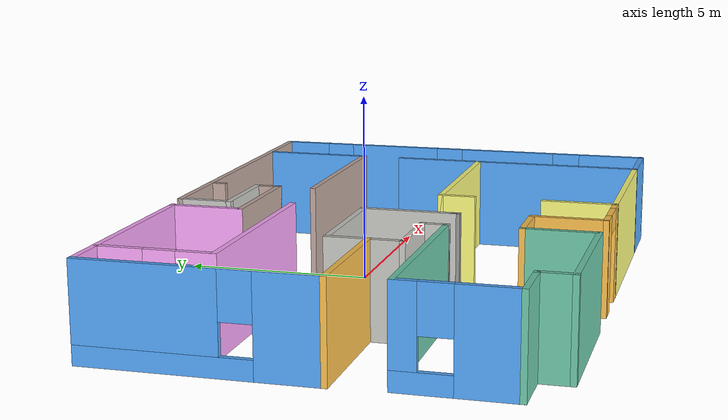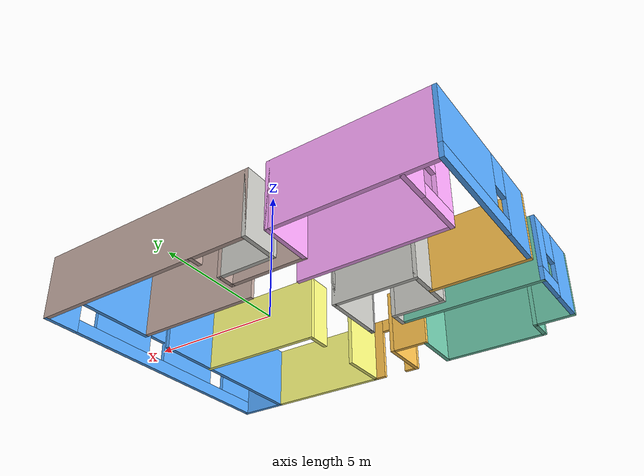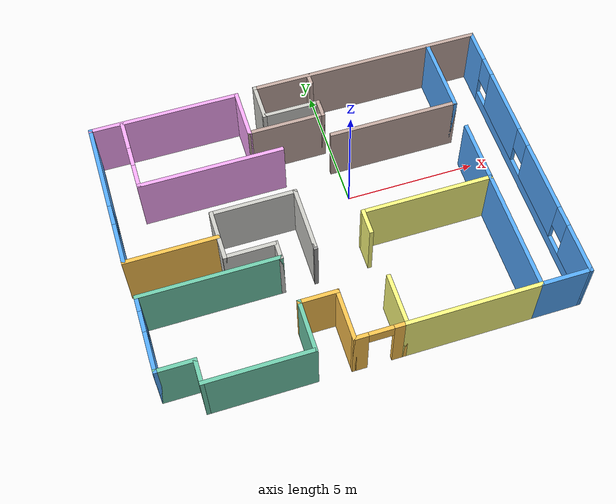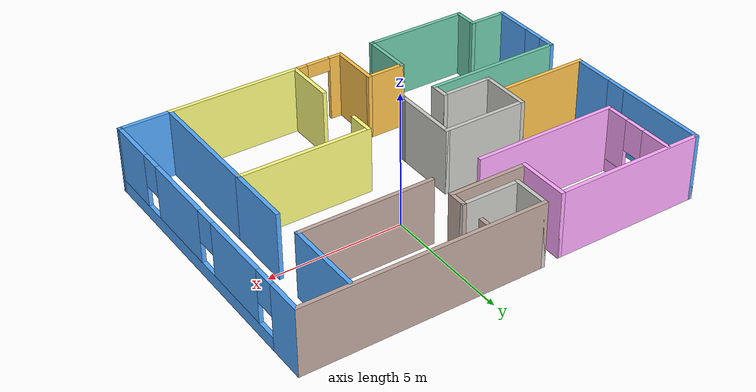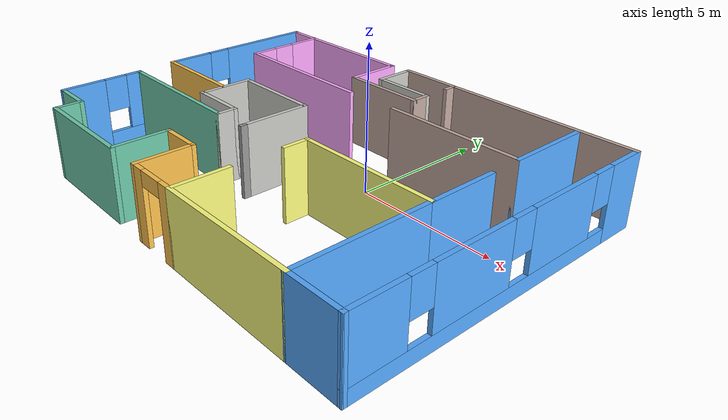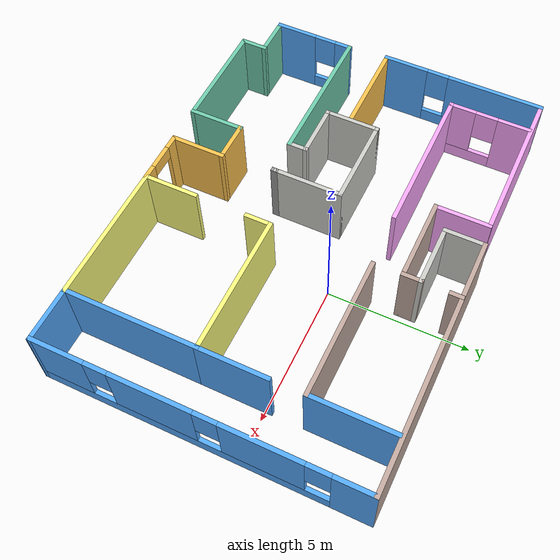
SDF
<?xml version='1.0'?>
<sdf version='1.6'>
  <model name='Building'>
    <pose frame=''>-1.13087 -1.23512 0 0 -0 0</pose>
    <link name='Wall_1'>
      <pose frame=''>-0.006279 -5.54906 0 0 -0 0</pose>
      <visual name='Wall_1_Visual_0'>
        <pose frame=''>-0.718304 0 1.25 0 -0 0</pose>
        <geometry>
          <box>
            <size>0.563392 0.15 2.5</size>
          </box>
        </geometry>
        <material>
          <script>
            <uri>file://media/materials/scripts/gazebo.material</uri>
            <name>Gazebo/Grey</name>
          </script>
          <ambient>1 0.764706 0.305882 1</ambient>
        </material>
        <meta>
          <layer>0</layer>
        </meta>
      </visual>
      <collision name='Wall_1_Collision_0'>
        <geometry>
          <box>
            <size>0.563392 0.15 2.5</size>
          </box>
        </geometry>
        <pose frame=''>-0.718304 0 1.25 0 -0 0</pose>
      </collision>
      <visual name='Wall_1_Visual_1'>
        <pose frame=''>0.731696 0 1.25 0 -0 0</pose>
        <geometry>
          <box>
            <size>0.536608 0.15 2.5</size>
          </box>
        </geometry>
        <material>
          <script>
            <uri>file://media/materials/scripts/gazebo.material</uri>
            <name>Gazebo/Grey</name>
          </script>
          <ambient>1 0.764706 0.305882 1</ambient>
        </material>
        <meta>
          <layer>0</layer>
        </meta>
      </visual>
      <collision name='Wall_1_Collision_1'>
        <geometry>
          <box>
            <size>0.536608 0.15 2.5</size>
          </box>
        </geometry>
        <pose frame=''>0.731696 0 1.25 0 -0 0</pose>
      </collision>
      <visual name='Wall_1_Visual_2'>
        <pose frame=''>0.013392 0 2.25 0 -0 0</pose>
        <geometry>
          <box>
            <size>0.9 0.15 0.5</size>
          </box>
        </geometry>
        <material>
          <script>
            <uri>file://media/materials/scripts/gazebo.material</uri>
            <name>Gazebo/Grey</name>
          </script>
          <ambient>1 0.764706 0.305882 1</ambient>
        </material>
        <meta>
          <layer>0</layer>
        </meta>
      </visual>
      <collision name='Wall_1_Collision_2'>
        <geometry>
          <box>
            <size>0.9 0.15 0.5</size>
          </box>
        </geometry>
        <pose frame=''>0.013392 0 2.25 0 -0 0</pose>
      </collision>
    </link>
    <link name='Wall_12'>
      <pose frame=''>-7.48128 -3.27406 0 0 -0 1.5708</pose>
      <visual name='Wall_12_Visual_0'>
        <pose frame=''>-0.718473 0 1.25 0 -0 0</pose>
        <geometry>
          <box>
            <size>1.56305 0.15 2.5</size>
          </box>
        </geometry>
        <material>
          <script>
            <uri>file://media/materials/scripts/gazebo.material</uri>
            <name>Gazebo/Grey</name>
          </script>
          <ambient>0.333333 0.666667 1 1</ambient>
        </material>
        <meta>
          <layer>0</layer>
        </meta>
      </visual>
      <collision name='Wall_12_Collision_0'>
        <geometry>
          <box>
            <size>1.56305 0.15 2.5</size>
          </box>
        </geometry>
        <pose frame=''>-0.718473 0 1.25 0 -0 0</pose>
      </collision>
      <visual name='Wall_12_Visual_1'>
        <pose frame=''>0.781527 0 0.25 0 -0 0</pose>
        <geometry>
          <box>
            <size>1.43695 0.15 0.5</size>
          </box>
        </geometry>
        <material>
          <script>
            <uri>file://media/materials/scripts/gazebo.material</uri>
            <name>Gazebo/Grey</name>
          </script>
          <ambient>0.333333 0.666667 1 1</ambient>
        </material>
        <meta>
          <layer>0</layer>
        </meta>
      </visual>
      <collision name='Wall_12_Collision_1'>
        <geometry>
          <box>
            <size>1.43695 0.15 0.5</size>
          </box>
        </geometry>
        <pose frame=''>0.781527 0 0.25 0 -0 0</pose>
      </collision>
      <visual name='Wall_12_Visual_2'>
        <pose frame=''>1.18153 0 1.5 0 -0 0</pose>
        <geometry>
          <box>
            <size>0.636947 0.15 2</size>
          </box>
        </geometry>
        <material>
          <script>
            <uri>file://media/materials/scripts/gazebo.material</uri>
            <name>Gazebo/Grey</name>
          </script>
          <ambient>0.333333 0.666667 1 1</ambient>
        </material>
        <meta>
          <layer>0</layer>
        </meta>
      </visual>
      <collision name='Wall_12_Collision_2'>
        <geometry>
          <box>
            <size>0.636947 0.15 2</size>
          </box>
        </geometry>
        <pose frame=''>1.18153 0 1.5 0 -0 0</pose>
      </collision>
      <visual name='Wall_12_Visual_3'>
        <pose frame=''>0.463053 0 1.9 0 -0 0</pose>
        <geometry>
          <box>
            <size>0.8 0.15 1.2</size>
          </box>
        </geometry>
        <material>
          <script>
            <uri>file://media/materials/scripts/gazebo.material</uri>
            <name>Gazebo/Grey</name>
          </script>
          <ambient>0.333333 0.666667 1 1</ambient>
        </material>
        <meta>
          <layer>0</layer>
        </meta>
      </visual>
      <collision name='Wall_12_Collision_3'>
        <geometry>
          <box>
            <size>0.8 0.15 1.2</size>
          </box>
        </geometry>
        <pose frame=''>0.463053 0 1.9 0 -0 0</pose>
      </collision>
    </link>
    <link name='Wall_13'>
      <collision name='Wall_13_Collision'>
        <geometry>
          <box>
            <size>5.25 0.15 2.5</size>
          </box>
        </geometry>
        <pose frame=''>0 0 1.25 0 -0 0</pose>
      </collision>
      <visual name='Wall_13_Visual'>
        <pose frame=''>0 0 1.25 0 -0 0</pose>
        <geometry>
          <box>
            <size>5.25 0.15 2.5</size>
          </box>
        </geometry>
        <material>
          <script>
            <uri>file://media/materials/scripts/gazebo.material</uri>
            <name>Gazebo/Grey</name>
          </script>
          <ambient>0.435294 0.796078 0.67451 1</ambient>
        </material>
        <meta>
          <layer>0</layer>
        </meta>
      </visual>
      <pose frame=''>-4.93128 -1.84906 0 0 -0 0</pose>
    </link>
    <link name='Wall_14'>
      <collision name='Wall_14_Collision'>
        <geometry>
          <box>
            <size>0.75 0.15 2.5</size>
          </box>
        </geometry>
        <pose frame=''>0 0 1.25 0 -0 0</pose>
      </collision>
      <visual name='Wall_14_Visual'>
        <pose frame=''>0 0 1.25 0 -0 0</pose>
        <geometry>
          <box>
            <size>0.75 0.15 2.5</size>
          </box>
        </geometry>
        <material>
          <script>
            <uri>file://media/materials/scripts/gazebo.material</uri>
            <name>Gazebo/CeilingTiled</name>
          </script>
          <ambient>1 1 1 1</ambient>
        </material>
        <meta>
          <layer>0</layer>
        </meta>
      </visual>
      <pose frame=''>-2.38128 -1.54906 0 0 -0 1.5708</pose>
    </link>
    <link name='Wall_15'>
      <collision name='Wall_15_Collision'>
        <geometry>
          <box>
            <size>2 0.15 2.5</size>
          </box>
        </geometry>
        <pose frame=''>0 0 1.25 0 -0 0</pose>
      </collision>
      <visual name='Wall_15_Visual'>
        <pose frame=''>0 0 1.25 0 -0 0</pose>
        <geometry>
          <box>
            <size>2 0.15 2.5</size>
          </box>
        </geometry>
        <material>
          <script>
            <uri>file://media/materials/scripts/gazebo.material</uri>
            <name>Gazebo/CeilingTiled</name>
          </script>
          <ambient>1 1 1 1</ambient>
        </material>
        <meta>
          <layer>0</layer>
        </meta>
      </visual>
      <pose frame=''>-3.30628 -1.24906 0 0 -0 3.14159</pose>
    </link>
    <link name='Wall_16'>
      <collision name='Wall_16_Collision'>
        <geometry>
          <box>
            <size>2 0.15 2.5</size>
          </box>
        </geometry>
        <pose frame=''>0 0 1.25 0 -0 0</pose>
      </collision>
      <visual name='Wall_16_Visual'>
        <pose frame=''>0 0 1.25 0 -0 0</pose>
        <geometry>
          <box>
            <size>2 0.15 2.5</size>
          </box>
        </geometry>
        <material>
          <script>
            <uri>file://media/materials/scripts/gazebo.material</uri>
            <name>Gazebo/CeilingTiled</name>
          </script>
          <ambient>1 1 1 1</ambient>
        </material>
        <meta>
          <layer>0</layer>
        </meta>
      </visual>
      <pose frame=''>-4.23128 -0.324056 0 0 -0 1.5708</pose>
    </link>
    <link name='Wall_2'>
      <collision name='Wall_2_Collision'>
        <geometry>
          <box>
            <size>2 0.15 2.5</size>
          </box>
        </geometry>
        <pose frame=''>0 0 1.25 0 -0 0</pose>
      </collision>
      <visual name='Wall_2_Visual'>
        <pose frame=''>0 0 1.25 0 -0 0</pose>
        <geometry>
          <box>
            <size>2 0.15 2.5</size>
          </box>
        </geometry>
        <material>
          <script>
            <uri>file://media/materials/scripts/gazebo.material</uri>
            <name>Gazebo/Grey</name>
          </script>
          <ambient>1 1 0.498039 1</ambient>
        </material>
        <meta>
          <layer>0</layer>
        </meta>
      </visual>
      <pose frame=''>0.918721 -4.62406 0 0 -0 1.5708</pose>
    </link>
    <link name='Wall_25'>
      <collision name='Wall_25_Collision'>
        <geometry>
          <box>
            <size>5 0.15 2.5</size>
          </box>
        </geometry>
        <pose frame=''>0 0 1.25 0 -0 0</pose>
      </collision>
      <visual name='Wall_25_Visual'>
        <pose frame=''>0 0 1.25 0 -0 0</pose>
        <geometry>
          <box>
            <size>5 0.15 2.5</size>
          </box>
        </geometry>
        <material>
          <script>
            <uri>file://media/materials/scripts/gazebo.material</uri>
            <name>Gazebo/Grey</name>
          </script>
          <ambient>1 1 0.498039 1</ambient>
        </material>
        <meta>
          <layer>0</layer>
        </meta>
      </visual>
      <pose frame=''>3.34372 -5.54906 0 0 -0 0</pose>
    </link>
    <link name='Wall_26'>
      <collision name='Wall_26_Collision'>
        <geometry>
          <box>
            <size>4.75 0.15 2.5</size>
          </box>
        </geometry>
        <pose frame=''>0 0 1.25 0 -0 0</pose>
      </collision>
      <visual name='Wall_26_Visual'>
        <pose frame=''>0 0 1.25 0 -0 0</pose>
        <geometry>
          <box>
            <size>4.75 0.15 2.5</size>
          </box>
        </geometry>
        <material>
          <script>
            <uri>file://media/materials/scripts/gazebo.material</uri>
            <name>Gazebo/Grey</name>
          </script>
          <ambient>0.333333 0.666667 1 1</ambient>
        </material>
        <meta>
          <layer>0</layer>
        </meta>
      </visual>
      <pose frame=''>5.76872 -3.24906 0 0 -0 1.5708</pose>
    </link>
    <link name='Wall_31'>
      <collision name='Wall_31_Collision'>
        <geometry>
          <box>
            <size>5 0.15 2.5</size>
          </box>
        </geometry>
        <pose frame=''>0 0 1.25 0 -0 0</pose>
      </collision>
      <visual name='Wall_31_Visual'>
        <pose frame=''>0 0 1.25 0 -0 0</pose>
        <geometry>
          <box>
            <size>5 0.15 2.5</size>
          </box>
        </geometry>
        <material>
          <script>
            <uri>file://media/materials/scripts/gazebo.material</uri>
            <name>Gazebo/Grey</name>
          </script>
          <ambient>1 1 0.498039 1</ambient>
        </material>
        <meta>
          <layer>0</layer>
        </meta>
      </visual>
      <pose frame=''>3.34372 -0.949056 0 0 -0 3.14159</pose>
    </link>
    <link name='Wall_32'>
      <collision name='Wall_32_Collision'>
        <geometry>
          <box>
            <size>1 0.15 2.5</size>
          </box>
        </geometry>
        <pose frame=''>0 0 1.25 0 -0 0</pose>
      </collision>
      <visual name='Wall_32_Visual'>
        <pose frame=''>0 0 1.25 0 -0 0</pose>
        <geometry>
          <box>
            <size>1 0.15 2.5</size>
          </box>
        </geometry>
        <material>
          <script>
            <uri>file://media/materials/scripts/gazebo.material</uri>
            <name>Gazebo/Grey</name>
          </script>
          <ambient>1 1 0.498039 1</ambient>
        </material>
        <meta>
          <layer>0</layer>
        </meta>
      </visual>
      <pose frame=''>0.918721 -1.37406 0 0 0 -1.5708</pose>
    </link>
    <link name='Wall_35'>
      <collision name='Wall_35_Collision'>
        <geometry>
          <box>
            <size>3.5 0.15 2.5</size>
          </box>
        </geometry>
        <pose frame=''>0 0 1.25 0 -0 0</pose>
      </collision>
      <visual name='Wall_35_Visual'>
        <pose frame=''>0 0 1.25 0 -0 0</pose>
        <geometry>
          <box>
            <size>3.5 0.15 2.5</size>
          </box>
        </geometry>
        <material>
          <script>
            <uri>file://media/materials/scripts/gazebo.material</uri>
            <name>Gazebo/Grey</name>
          </script>
          <ambient>1 0.764706 0.305882 1</ambient>
        </material>
        <meta>
          <layer>0</layer>
        </meta>
      </visual>
      <pose frame=''>-5.92502 -0.399981 0 0 -0 3.14159</pose>
    </link>
    <link name='Wall_36'>
      <pose frame=''>-7.60002 2.52502 0 0 -0 1.5708</pose>
      <visual name='Wall_36_Visual_0'>
        <pose frame=''>-2.16019 0 1.25 0 -0 0</pose>
        <geometry>
          <box>
            <size>1.67961 0.15 2.5</size>
          </box>
        </geometry>
        <material>
          <script>
            <uri>file://media/materials/scripts/gazebo.material</uri>
            <name>Gazebo/Grey</name>
          </script>
          <ambient>0.333333 0.666667 1 1</ambient>
        </material>
        <meta>
          <layer>0</layer>
        </meta>
      </visual>
      <collision name='Wall_36_Collision_0'>
        <geometry>
          <box>
            <size>1.67961 0.15 2.5</size>
          </box>
        </geometry>
        <pose frame=''>-2.16019 0 1.25 0 -0 0</pose>
      </collision>
      <visual name='Wall_36_Visual_1'>
        <pose frame=''>0.839806 0 0.25 0 -0 0</pose>
        <geometry>
          <box>
            <size>4.32039 0.15 0.5</size>
          </box>
        </geometry>
        <material>
          <script>
            <uri>file://media/materials/scripts/gazebo.material</uri>
            <name>Gazebo/Grey</name>
          </script>
          <ambient>0.333333 0.666667 1 1</ambient>
        </material>
        <meta>
          <layer>0</layer>
        </meta>
      </visual>
      <collision name='Wall_36_Collision_1'>
        <geometry>
          <box>
            <size>4.32039 0.15 0.5</size>
          </box>
        </geometry>
        <pose frame=''>0.839806 0 0.25 0 -0 0</pose>
      </collision>
      <visual name='Wall_36_Visual_2'>
        <pose frame=''>1.23981 0 1.5 0 -0 0</pose>
        <geometry>
          <box>
            <size>3.52039 0.15 2</size>
          </box>
        </geometry>
        <material>
          <script>
            <uri>file://media/materials/scripts/gazebo.material</uri>
            <name>Gazebo/Grey</name>
          </script>
          <ambient>0.333333 0.666667 1 1</ambient>
        </material>
        <meta>
          <layer>0</layer>
        </meta>
      </visual>
      <collision name='Wall_36_Collision_2'>
        <geometry>
          <box>
            <size>3.52039 0.15 2</size>
          </box>
        </geometry>
        <pose frame=''>1.23981 0 1.5 0 -0 0</pose>
      </collision>
      <visual name='Wall_36_Visual_3'>
        <pose frame=''>-0.920388 0 1.9 0 -0 0</pose>
        <geometry>
          <box>
            <size>0.8 0.15 1.2</size>
          </box>
        </geometry>
        <material>
          <script>
            <uri>file://media/materials/scripts/gazebo.material</uri>
            <name>Gazebo/Grey</name>
          </script>
          <ambient>0.333333 0.666667 1 1</ambient>
        </material>
        <meta>
          <layer>0</layer>
        </meta>
      </visual>
      <collision name='Wall_36_Collision_3'>
        <geometry>
          <box>
            <size>0.8 0.15 1.2</size>
          </box>
        </geometry>
        <pose frame=''>-0.920388 0 1.9 0 -0 0</pose>
      </collision>
    </link>
    <link name='Wall_37'>
      <collision name='Wall_37_Collision'>
        <geometry>
          <box>
            <size>5.75 0.15 2.5</size>
          </box>
        </geometry>
        <pose frame=''>0 0 1.25 0 -0 0</pose>
      </collision>
      <visual name='Wall_37_Visual'>
        <pose frame=''>0 0 1.25 0 -0 0</pose>
        <geometry>
          <box>
            <size>5.75 0.15 2.5</size>
          </box>
        </geometry>
        <material>
          <script>
            <uri>file://media/materials/scripts/gazebo.material</uri>
            <name>Gazebo/Grey</name>
          </script>
          <ambient>1 0.666667 1 1</ambient>
        </material>
        <meta>
          <layer>0</layer>
        </meta>
      </visual>
      <pose frame=''>-4.80002 5.45002 0 0 -0 0</pose>
    </link>
    <link name='Wall_38'>
      <collision name='Wall_38_Collision'>
        <geometry>
          <box>
            <size>2 0.15 2.5</size>
          </box>
        </geometry>
        <pose frame=''>0 0 1.25 0 -0 0</pose>
      </collision>
      <visual name='Wall_38_Visual'>
        <pose frame=''>0 0 1.25 0 -0 0</pose>
        <geometry>
          <box>
            <size>2 0.15 2.5</size>
          </box>
        </geometry>
        <material>
          <script>
            <uri>file://media/materials/scripts/gazebo.material</uri>
            <name>Gazebo/Grey</name>
          </script>
          <ambient>1 0.666667 1 1</ambient>
        </material>
        <meta>
          <layer>0</layer>
        </meta>
      </visual>
      <pose frame=''>-2.00002 4.52502 0 0 0 -1.5708</pose>
    </link>
    <link name='Wall_39'>
      <collision name='Wall_39_Collision'>
        <geometry>
          <box>
            <size>3 0.15 2.5</size>
          </box>
        </geometry>
        <pose frame=''>0 0 1.25 0 -0 0</pose>
      </collision>
      <visual name='Wall_39_Visual'>
        <pose frame=''>0 0 1.25 0 -0 0</pose>
        <geometry>
          <box>
            <size>3 0.15 2.5</size>
          </box>
        </geometry>
        <material>
          <script>
            <uri>file://media/materials/scripts/gazebo.material</uri>
            <name>Gazebo/Grey</name>
          </script>
          <ambient>0.760784 0.662745 0.627451 1</ambient>
        </material>
        <meta>
          <layer>0</layer>
        </meta>
      </visual>
      <pose frame=''>-0.575019 3.60002 0 0 -0 0</pose>
    </link>
    <link name='Wall_4'>
      <collision name='Wall_4_Collision'>
        <geometry>
          <box>
            <size>2 0.15 2.5</size>
          </box>
        </geometry>
        <pose frame=''>0 0 1.25 0 -0 0</pose>
      </collision>
      <visual name='Wall_4_Visual'>
        <pose frame=''>0 0 1.25 0 -0 0</pose>
        <geometry>
          <box>
            <size>2 0.15 2.5</size>
          </box>
        </geometry>
        <material>
          <script>
            <uri>file://media/materials/scripts/gazebo.material</uri>
            <name>Gazebo/Grey</name>
          </script>
          <ambient>1 0.764706 0.305882 1</ambient>
        </material>
        <meta>
          <layer>0</layer>
        </meta>
      </visual>
      <pose frame=''>-0.931279 -4.62406 0 0 -0 1.5708</pose>
    </link>
    <link name='Wall_40'>
      <collision name='Wall_40_Collision'>
        <geometry>
          <box>
            <size>0.75 0.15 2.5</size>
          </box>
        </geometry>
        <pose frame=''>0 0 1.25 0 -0 0</pose>
      </collision>
      <visual name='Wall_40_Visual'>
        <pose frame=''>0 0 1.25 0 -0 0</pose>
        <geometry>
          <box>
            <size>0.75 0.15 2.5</size>
          </box>
        </geometry>
        <material>
          <script>
            <uri>file://media/materials/scripts/gazebo.material</uri>
            <name>Gazebo/Grey</name>
          </script>
          <ambient>0.760784 0.662745 0.627451 1</ambient>
        </material>
        <meta>
          <layer>0</layer>
        </meta>
      </visual>
      <pose frame=''>0.849981 3.90002 0 0 -0 1.5708</pose>
    </link>
    <link name='Wall_41'>
      <collision name='Wall_41_Collision'>
        <geometry>
          <box>
            <size>2.25 0.15 2.5</size>
          </box>
        </geometry>
        <pose frame=''>0 0 1.25 0 -0 0</pose>
      </collision>
      <visual name='Wall_41_Visual'>
        <pose frame=''>0 0 1.25 0 -0 0</pose>
        <geometry>
          <box>
            <size>2.25 0.15 2.5</size>
          </box>
        </geometry>
        <material>
          <script>
            <uri>file://media/materials/scripts/gazebo.material</uri>
            <name>Gazebo/CeilingTiled</name>
          </script>
          <ambient>1 1 1 1</ambient>
        </material>
        <meta>
          <layer>0</layer>
        </meta>
      </visual>
      <pose frame=''>-0.200019 4.20002 0 0 -0 3.14159</pose>
    </link>
    <link name='Wall_44'>
      <pose frame=''>-6.41472 3.96565 0 0 0 -1.5708</pose>
      <visual name='Wall_44_Visual_0'>
        <pose frame=''>-0.899997 0 1.25 0 -0 0</pose>
        <geometry>
          <box>
            <size>1.20001 0.15 2.5</size>
          </box>
        </geometry>
        <material>
          <script>
            <uri>file://media/materials/scripts/gazebo.material</uri>
            <name>Gazebo/Grey</name>
          </script>
          <ambient>1 0.666667 1 1</ambient>
        </material>
        <meta>
          <layer>0</layer>
        </meta>
      </visual>
      <collision name='Wall_44_Collision_0'>
        <geometry>
          <box>
            <size>1.20001 0.15 2.5</size>
          </box>
        </geometry>
        <pose frame=''>-0.899997 0 1.25 0 -0 0</pose>
      </collision>
      <visual name='Wall_44_Visual_1'>
        <pose frame=''>0.600003 0 0.25 0 -0 0</pose>
        <geometry>
          <box>
            <size>1.79999 0.15 0.5</size>
          </box>
        </geometry>
        <material>
          <script>
            <uri>file://media/materials/scripts/gazebo.material</uri>
            <name>Gazebo/Grey</name>
          </script>
          <ambient>1 0.666667 1 1</ambient>
        </material>
        <meta>
          <layer>0</layer>
        </meta>
      </visual>
      <collision name='Wall_44_Collision_1'>
        <geometry>
          <box>
            <size>1.79999 0.15 0.5</size>
          </box>
        </geometry>
        <pose frame=''>0.600003 0 0.25 0 -0 0</pose>
      </collision>
      <visual name='Wall_44_Visual_2'>
        <pose frame=''>1 0 1.5 0 -0 0</pose>
        <geometry>
          <box>
            <size>0.999994 0.15 2</size>
          </box>
        </geometry>
        <material>
          <script>
            <uri>file://media/materials/scripts/gazebo.material</uri>
            <name>Gazebo/Grey</name>
          </script>
          <ambient>1 0.666667 1 1</ambient>
        </material>
        <meta>
          <layer>0</layer>
        </meta>
      </visual>
      <collision name='Wall_44_Collision_2'>
        <geometry>
          <box>
            <size>0.999994 0.15 2</size>
          </box>
        </geometry>
        <pose frame=''>1 0 1.5 0 -0 0</pose>
      </collision>
      <visual name='Wall_44_Visual_3'>
        <pose frame=''>0.100006 0 1.9 0 -0 0</pose>
        <geometry>
          <box>
            <size>0.8 0.15 1.2</size>
          </box>
        </geometry>
        <material>
          <script>
            <uri>file://media/materials/scripts/gazebo.material</uri>
            <name>Gazebo/Grey</name>
          </script>
          <ambient>1 0.666667 1 1</ambient>
        </material>
        <meta>
          <layer>0</layer>
        </meta>
      </visual>
      <collision name='Wall_44_Collision_3'>
        <geometry>
          <box>
            <size>0.8 0.15 1.2</size>
          </box>
        </geometry>
        <pose frame=''>0.100006 0 1.9 0 -0 0</pose>
      </collision>
    </link>
    <link name='Wall_45'>
      <collision name='Wall_45_Collision'>
        <geometry>
          <box>
            <size>5.5 0.15 2.5</size>
          </box>
        </geometry>
        <pose frame=''>0 0 1.25 0 -0 0</pose>
      </collision>
      <visual name='Wall_45_Visual'>
        <pose frame=''>0 0 1.25 0 -0 0</pose>
        <geometry>
          <box>
            <size>5.5 0.15 2.5</size>
          </box>
        </geometry>
        <material>
          <script>
            <uri>file://media/materials/scripts/gazebo.material</uri>
            <name>Gazebo/Grey</name>
          </script>
          <ambient>1 0.666667 1 1</ambient>
        </material>
        <meta>
          <layer>0</layer>
        </meta>
      </visual>
      <pose frame=''>-3.73972 2.54065 0 0 -0 0</pose>
    </link>
    <link name='Wall_47'>
      <collision name='Wall_47_Collision'>
        <geometry>
          <box>
            <size>5 0.15 2.5</size>
          </box>
        </geometry>
        <pose frame=''>0 0 1.25 0 -0 0</pose>
      </collision>
      <visual name='Wall_47_Visual'>
        <pose frame=''>0 0 1.25 0 -0 0</pose>
        <geometry>
          <box>
            <size>5 0.15 2.5</size>
          </box>
        </geometry>
        <material>
          <script>
            <uri>file://media/materials/scripts/gazebo.material</uri>
            <name>Gazebo/Grey</name>
          </script>
          <ambient>0.760784 0.662745 0.627451 1</ambient>
        </material>
        <meta>
          <layer>0</layer>
        </meta>
      </visual>
      <pose frame=''>3.32533 2.59763 0 0 -0 0</pose>
    </link>
    <link name='Wall_5'>
      <collision name='Wall_5_Collision'>
        <geometry>
          <box>
            <size>1.5 0.15 2.5</size>
          </box>
        </geometry>
        <pose frame=''>0 0 1.25 0 -0 0</pose>
      </collision>
      <visual name='Wall_5_Visual'>
        <pose frame=''>0 0 1.25 0 -0 0</pose>
        <geometry>
          <box>
            <size>1.5 0.15 2.5</size>
          </box>
        </geometry>
        <material>
          <script>
            <uri>file://media/materials/scripts/gazebo.material</uri>
            <name>Gazebo/Grey</name>
          </script>
          <ambient>1 0.764706 0.305882 1</ambient>
        </material>
        <meta>
          <layer>0</layer>
        </meta>
      </visual>
      <pose frame=''>-1.60628 -3.69906 0 0 -0 3.14159</pose>
    </link>
    <link name='Wall_50'>
      <collision name='Wall_50_Collision'>
        <geometry>
          <box>
            <size>1.5 0.15 2.5</size>
          </box>
        </geometry>
        <pose frame=''>0 0 1.25 0 -0 0</pose>
      </collision>
      <visual name='Wall_50_Visual'>
        <pose frame=''>0 0 1.25 0 -0 0</pose>
        <geometry>
          <box>
            <size>1.5 0.15 2.5</size>
          </box>
        </geometry>
        <material>
          <script>
            <uri>file://media/materials/scripts/gazebo.material</uri>
            <name>Gazebo/CeilingTiled</name>
          </script>
          <ambient>1 1 1 1</ambient>
        </material>
        <meta>
          <layer>0</layer>
        </meta>
      </visual>
      <pose frame=''>-1.25002 4.87502 0 0 -0 1.5708</pose>
    </link>
    <link name='Wall_51'>
      <collision name='Wall_51_Collision'>
        <geometry>
          <box>
            <size>9 0.15 2.5</size>
          </box>
        </geometry>
        <pose frame=''>0 0 1.25 0 -0 0</pose>
      </collision>
      <visual name='Wall_51_Visual'>
        <pose frame=''>0 0 1.25 0 -0 0</pose>
        <geometry>
          <box>
            <size>9 0.15 2.5</size>
          </box>
        </geometry>
        <material>
          <script>
            <uri>file://media/materials/scripts/gazebo.material</uri>
            <name>Gazebo/Grey</name>
          </script>
          <ambient>0.760784 0.662745 0.627451 1</ambient>
        </material>
        <meta>
          <layer>0</layer>
        </meta>
      </visual>
      <pose frame=''>3.17498 5.55002 0 0 -0 0</pose>
    </link>
    <link name='Wall_52'>
      <pose frame=''>7.59998 1.8e-05 0 0 0 -1.5708</pose>
      <visual name='Wall_52_Visual_0'>
        <pose frame=''>-4.93201 0 1.25 0 -0 0</pose>
        <geometry>
          <box>
            <size>1.38597 0.15 2.5</size>
          </box>
        </geometry>
        <material>
          <script>
            <uri>file://media/materials/scripts/gazebo.material</uri>
            <name>Gazebo/Grey</name>
          </script>
          <ambient>0.333333 0.666667 1 1</ambient>
        </material>
        <meta>
          <layer>0</layer>
        </meta>
      </visual>
      <collision name='Wall_52_Collision_0'>
        <geometry>
          <box>
            <size>1.38597 0.15 2.5</size>
          </box>
        </geometry>
        <pose frame=''>-4.93201 0 1.25 0 -0 0</pose>
      </collision>
      <visual name='Wall_52_Visual_1'>
        <pose frame=''>0.692986 0 0.25 0 -0 0</pose>
        <geometry>
          <box>
            <size>9.86403 0.15 0.5</size>
          </box>
        </geometry>
        <material>
          <script>
            <uri>file://media/materials/scripts/gazebo.material</uri>
            <name>Gazebo/Grey</name>
          </script>
          <ambient>0.333333 0.666667 1 1</ambient>
        </material>
        <meta>
          <layer>0</layer>
        </meta>
      </visual>
      <collision name='Wall_52_Collision_1'>
        <geometry>
          <box>
            <size>9.86403 0.15 0.5</size>
          </box>
        </geometry>
        <pose frame=''>0.692986 0 0.25 0 -0 0</pose>
      </collision>
      <visual name='Wall_52_Visual_2'>
        <pose frame=''>-2.08342 0 1.5 0 -0 0</pose>
        <geometry>
          <box>
            <size>2.71123 0.15 2</size>
          </box>
        </geometry>
        <material>
          <script>
            <uri>file://media/materials/scripts/gazebo.material</uri>
            <name>Gazebo/Grey</name>
          </script>
          <ambient>0.333333 0.666667 1 1</ambient>
        </material>
        <meta>
          <layer>0</layer>
        </meta>
      </visual>
      <collision name='Wall_52_Collision_2'>
        <geometry>
          <box>
            <size>2.71123 0.15 2</size>
          </box>
        </geometry>
        <pose frame=''>-2.08342 0 1.5 0 -0 0</pose>
      </collision>
      <visual name='Wall_52_Visual_3'>
        <pose frame=''>1.48101 0 1.5 0 -0 0</pose>
        <geometry>
          <box>
            <size>2.81763 0.15 2</size>
          </box>
        </geometry>
        <material>
          <script>
            <uri>file://media/materials/scripts/gazebo.material</uri>
            <name>Gazebo/Grey</name>
          </script>
          <ambient>0.333333 0.666667 1 1</ambient>
        </material>
        <meta>
          <layer>0</layer>
        </meta>
      </visual>
      <collision name='Wall_52_Collision_3'>
        <geometry>
          <box>
            <size>2.81763 0.15 2</size>
          </box>
        </geometry>
        <pose frame=''>1.48101 0 1.5 0 -0 0</pose>
      </collision>
      <visual name='Wall_52_Visual_4'>
        <pose frame=''>4.65741 0 1.5 0 -0 0</pose>
        <geometry>
          <box>
            <size>1.93518 0.15 2</size>
          </box>
        </geometry>
        <material>
          <script>
            <uri>file://media/materials/scripts/gazebo.material</uri>
            <name>Gazebo/Grey</name>
          </script>
          <ambient>0.333333 0.666667 1 1</ambient>
        </material>
        <meta>
          <layer>0</layer>
        </meta>
      </visual>
      <collision name='Wall_52_Collision_4'>
        <geometry>
          <box>
            <size>1.93518 0.15 2</size>
          </box>
        </geometry>
        <pose frame=''>4.65741 0 1.5 0 -0 0</pose>
      </collision>
      <visual name='Wall_52_Visual_5'>
        <pose frame=''>-3.83903 0 1.9 0 -0 0</pose>
        <geometry>
          <box>
            <size>0.8 0.15 1.2</size>
          </box>
        </geometry>
        <material>
          <script>
            <uri>file://media/materials/scripts/gazebo.material</uri>
            <name>Gazebo/Grey</name>
          </script>
          <ambient>0.333333 0.666667 1 1</ambient>
        </material>
        <meta>
          <layer>0</layer>
        </meta>
      </visual>
      <collision name='Wall_52_Collision_5'>
        <geometry>
          <box>
            <size>0.8 0.15 1.2</size>
          </box>
        </geometry>
        <pose frame=''>-3.83903 0 1.9 0 -0 0</pose>
      </collision>
      <visual name='Wall_52_Visual_6'>
        <pose frame=''>-0.327802 0 1.9 0 -0 0</pose>
        <geometry>
          <box>
            <size>0.8 0.15 1.2</size>
          </box>
        </geometry>
        <material>
          <script>
            <uri>file://media/materials/scripts/gazebo.material</uri>
            <name>Gazebo/Grey</name>
          </script>
          <ambient>0.333333 0.666667 1 1</ambient>
        </material>
        <meta>
          <layer>0</layer>
        </meta>
      </visual>
      <collision name='Wall_52_Collision_6'>
        <geometry>
          <box>
            <size>0.8 0.15 1.2</size>
          </box>
        </geometry>
        <pose frame=''>-0.327802 0 1.9 0 -0 0</pose>
      </collision>
      <visual name='Wall_52_Visual_7'>
        <pose frame=''>3.28982 0 1.9 0 -0 0</pose>
        <geometry>
          <box>
            <size>0.8 0.15 1.2</size>
          </box>
        </geometry>
        <material>
          <script>
            <uri>file://media/materials/scripts/gazebo.material</uri>
            <name>Gazebo/Grey</name>
          </script>
          <ambient>0.333333 0.666667 1 1</ambient>
        </material>
        <meta>
          <layer>0</layer>
        </meta>
      </visual>
      <collision name='Wall_52_Collision_7'>
        <geometry>
          <box>
            <size>0.8 0.15 1.2</size>
          </box>
        </geometry>
        <pose frame=''>3.28982 0 1.9 0 -0 0</pose>
      </collision>
    </link>
    <link name='Wall_53'>
      <collision name='Wall_53_Collision'>
        <geometry>
          <box>
            <size>1.98126 0.15 2.5</size>
          </box>
        </geometry>
        <pose frame=''>0 0 1.25 0 -0 0</pose>
      </collision>
      <visual name='Wall_53_Visual'>
        <pose frame=''>0 0 1.25 0 -0 0</pose>
        <geometry>
          <box>
            <size>1.98126 0.15 2.5</size>
          </box>
        </geometry>
        <material>
          <script>
            <uri>file://media/materials/scripts/gazebo.material</uri>
            <name>Gazebo/Grey</name>
          </script>
          <ambient>0.333333 0.666667 1 1</ambient>
        </material>
        <meta>
          <layer>0</layer>
        </meta>
      </visual>
      <pose frame=''>6.68435 -5.54952 0 0 -0 3.14109</pose>
    </link>
    <link name='Wall_55'>
      <collision name='Wall_55_Collision'>
        <geometry>
          <box>
            <size>3 0.15 2.5</size>
          </box>
        </geometry>
        <pose frame=''>0 0 1.25 0 -0 0</pose>
      </collision>
      <visual name='Wall_55_Visual'>
        <pose frame=''>0 0 1.25 0 -0 0</pose>
        <geometry>
          <box>
            <size>3 0.15 2.5</size>
          </box>
        </geometry>
        <material>
          <script>
            <uri>file://media/materials/scripts/gazebo.material</uri>
            <name>Gazebo/Grey</name>
          </script>
          <ambient>0.333333 0.666667 1 1</ambient>
        </material>
        <meta>
          <layer>0</layer>
        </meta>
      </visual>
      <pose frame=''>5.75033 4.02263 0 0 -0 1.5708</pose>
    </link>
    <link name='Wall_57'>
      <collision name='Wall_57_Collision'>
        <geometry>
          <box>
            <size>0.5 0.15 2.5</size>
          </box>
        </geometry>
        <pose frame=''>0 0 1.25 0 -0 0</pose>
      </collision>
      <visual name='Wall_57_Visual'>
        <pose frame=''>0 0 1.25 0 -0 0</pose>
        <geometry>
          <box>
            <size>0.5 0.15 2.5</size>
          </box>
        </geometry>
        <material>
          <script>
            <uri>file://media/materials/scripts/gazebo.material</uri>
            <name>Gazebo/Grey</name>
          </script>
          <ambient>0.760784 0.662745 0.627451 1</ambient>
        </material>
        <meta>
          <layer>0</layer>
        </meta>
      </visual>
      <pose frame=''>0.867846 5.35945 0 0 0 -1.5708</pose>
    </link>
    <link name='Wall_59'>
      <collision name='Wall_59_Collision'>
        <geometry>
          <box>
            <size>2.5 0.15 2.5</size>
          </box>
        </geometry>
        <pose frame=''>0 0 1.25 0 -0 0</pose>
      </collision>
      <visual name='Wall_59_Visual'>
        <pose frame=''>0 0 1.25 0 -0 0</pose>
        <geometry>
          <box>
            <size>2.5 0.15 2.5</size>
          </box>
        </geometry>
        <material>
          <script>
            <uri>file://media/materials/scripts/gazebo.material</uri>
            <name>Gazebo/Grey</name>
          </script>
          <ambient>0.333333 0.666667 1 1</ambient>
        </material>
        <meta>
          <layer>0</layer>
        </meta>
      </visual>
      <pose frame=''>5.76872 0.225944 0 0 -0 1.5708</pose>
    </link>
    <link name='Wall_6'>
      <collision name='Wall_6_Collision'>
        <geometry>
          <box>
            <size>2 0.15 2.5</size>
          </box>
        </geometry>
        <pose frame=''>0 0 1.25 0 -0 0</pose>
      </collision>
      <visual name='Wall_6_Visual'>
        <pose frame=''>0 0 1.25 0 -0 0</pose>
        <geometry>
          <box>
            <size>2 0.15 2.5</size>
          </box>
        </geometry>
        <material>
          <script>
            <uri>file://media/materials/scripts/gazebo.material</uri>
            <name>Gazebo/Grey</name>
          </script>
          <ambient>0.435294 0.796078 0.67451 1</ambient>
        </material>
        <meta>
          <layer>0</layer>
        </meta>
      </visual>
      <pose frame=''>-2.28128 -4.62406 0 0 0 -1.5708</pose>
    </link>
    <link name='Wall_63'>
      <collision name='Wall_63_Collision'>
        <geometry>
          <box>
            <size>3.25 0.15 2.5</size>
          </box>
        </geometry>
        <pose frame=''>0 0 1.25 0 -0 0</pose>
      </collision>
      <visual name='Wall_63_Visual'>
        <pose frame=''>0 0 1.25 0 -0 0</pose>
        <geometry>
          <box>
            <size>3.25 0.15 2.5</size>
          </box>
        </geometry>
        <material>
          <script>
            <uri>file://media/materials/scripts/gazebo.material</uri>
            <name>Gazebo/CeilingTiled</name>
          </script>
          <ambient>1 1 1 1</ambient>
        </material>
        <meta>
          <layer>0</layer>
        </meta>
      </visual>
      <pose frame=''>-2.68128 0.600944 0 0 -0 0</pose>
    </link>
    <link name='Wall_66'>
      <collision name='Wall_66_Collision'>
        <geometry>
          <box>
            <size>2.5 0.15 2.5</size>
          </box>
        </geometry>
        <pose frame=''>0 0 1.25 0 -0 0</pose>
      </collision>
      <visual name='Wall_66_Visual'>
        <pose frame=''>0 0 1.25 0 -0 0</pose>
        <geometry>
          <box>
            <size>2.5 0.15 2.5</size>
          </box>
        </geometry>
        <material>
          <script>
            <uri>file://media/materials/scripts/gazebo.material</uri>
            <name>Gazebo/CeilingTiled</name>
          </script>
          <ambient>1 1 1 1</ambient>
        </material>
        <meta>
          <layer>0</layer>
        </meta>
      </visual>
      <pose frame=''>-1.13128 -0.574056 0 0 0 -1.5708</pose>
    </link>
    <link name='Wall_67'>
      <collision name='Wall_67_Collision'>
        <geometry>
          <box>
            <size>0.25 0.15 2.5</size>
          </box>
        </geometry>
        <pose frame=''>0 0 1.25 0 -0 0</pose>
      </collision>
      <visual name='Wall_67_Visual'>
        <pose frame=''>0 0 1.25 0 -0 0</pose>
        <geometry>
          <box>
            <size>0.25 0.15 2.5</size>
          </box>
        </geometry>
        <material>
          <script>
            <uri>file://media/materials/scripts/gazebo.material</uri>
            <name>Gazebo/Grey</name>
          </script>
          <ambient>1 1 1 1</ambient>
        </material>
        <meta>
          <layer>0</layer>
        </meta>
      </visual>
      <pose frame=''>-1.13128 -1.79906 0 0 0 -1.5708</pose>
    </link>
    <link name='Wall_7'>
      <collision name='Wall_7_Collision'>
        <geometry>
          <box>
            <size>4 0.15 2.5</size>
          </box>
        </geometry>
        <pose frame=''>0 0 1.25 0 -0 0</pose>
      </collision>
      <visual name='Wall_7_Visual'>
        <pose frame=''>0 0 1.25 0 -0 0</pose>
        <geometry>
          <box>
            <size>4 0.15 2.5</size>
          </box>
        </geometry>
        <material>
          <script>
            <uri>file://media/materials/scripts/gazebo.material</uri>
            <name>Gazebo/Grey</name>
          </script>
          <ambient>0.435294 0.796078 0.67451 1</ambient>
        </material>
        <meta>
          <layer>0</layer>
        </meta>
      </visual>
      <pose frame=''>-4.20628 -5.54906 0 0 -0 3.14159</pose>
    </link>
    <link name='Wall_8'>
      <collision name='Wall_8_Collision'>
        <geometry>
          <box>
            <size>1 0.15 2.5</size>
          </box>
        </geometry>
        <pose frame=''>0 0 1.25 0 -0 0</pose>
      </collision>
      <visual name='Wall_8_Visual'>
        <pose frame=''>0 0 1.25 0 -0 0</pose>
        <geometry>
          <box>
            <size>1 0.15 2.5</size>
          </box>
        </geometry>
        <material>
          <script>
            <uri>file://media/materials/scripts/gazebo.material</uri>
            <name>Gazebo/Grey</name>
          </script>
          <ambient>0.435294 0.796078 0.67451 1</ambient>
        </material>
        <meta>
          <layer>0</layer>
        </meta>
      </visual>
      <pose frame=''>-6.13128 -5.12406 0 0 -0 1.5708</pose>
    </link>
    <link name='Wall_9'>
      <collision name='Wall_9_Collision'>
        <geometry>
          <box>
            <size>1.5 0.15 2.5</size>
          </box>
        </geometry>
        <pose frame=''>0 0 1.25 0 -0 0</pose>
      </collision>
      <visual name='Wall_9_Visual'>
        <pose frame=''>0 0 1.25 0 -0 0</pose>
        <geometry>
          <box>
            <size>1.5 0.15 2.5</size>
          </box>
        </geometry>
        <material>
          <script>
            <uri>file://media/materials/scripts/gazebo.material</uri>
            <name>Gazebo/Grey</name>
          </script>
          <ambient>0.435294 0.796078 0.67451 1</ambient>
        </material>
        <meta>
          <layer>0</layer>
        </meta>
      </visual>
      <pose frame=''>-6.80628 -4.69906 0 0 -0 3.14159</pose>
    </link>
    <static>1</static>
  </model>
</sdf>
